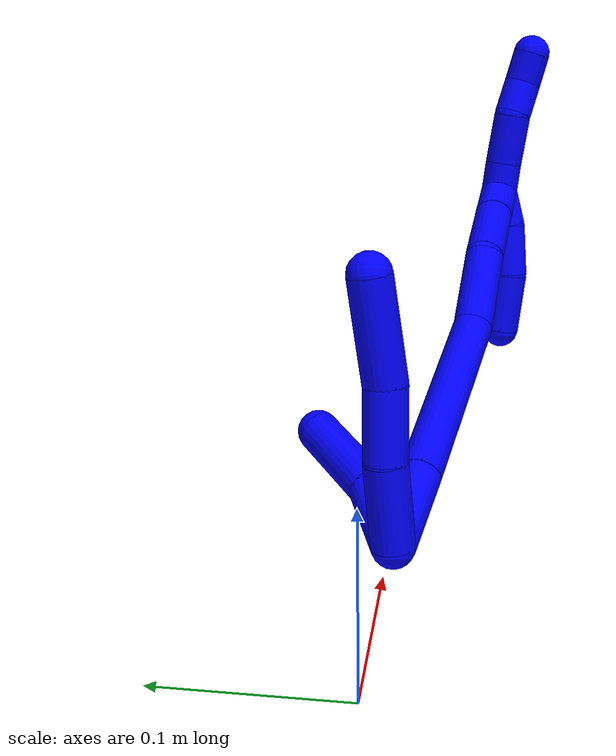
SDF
<sdf version="1.7">
 <world name="default">
  <model name="photoneo_s_sensor">
   <static>1</static>
   <pose>0 0 2 1.57079 1.57079 3.14159</pose>
   <link name="link">
    <inertial><mass>0.1</mass></inertial>
    <sensor name="sensor" type="depth">
     <update_rate>30</update_rate>
     <camera>
      <horizontal_fov>1.22</horizontal_fov>
      <image><width>1920</width><height>1200</height><format>B8G8R8</format></image>
      <clip><near>0.1</near><far>4</far></clip>
      <depth_camera><output>points</output></depth_camera>
     </camera>
     <plugin name="camera_plugin" filename="libgazebo_ros_depth_camera.so">
      <baseline>0.2</baseline>
      <alwaysOn>1</alwaysOn>
      <updateRate>0.0</updateRate>
      <cameraName>camera_ir</cameraName>
      <imageTopicName>/camera/color/image_raw</imageTopicName>
      <cameraInfoTopicName>/camera/color/camera_info</cameraInfoTopicName>
      <depthImageTopicName>/camera/depth/image_raw</depthImageTopicName>
      <depthImageCameraInfoTopicName>/camera/depth/camera_info</depthImageCameraInfoTopicName>
      <pointCloudTopicName>/camera/depth/points</pointCloudTopicName>
      <frameName>fr_optical</frameName>
      <pointCloudCutoff>0.1</pointCloudCutoff>
      <pointCloudCutoffMax>2.0</pointCloudCutoffMax>
      <distortionK1>0</distortionK1>
      <distortionK2>0</distortionK2>
      <distortionK3>0</distortionK3>
      <distortionT1>0</distortionT1>
      <distortionT2>0</distortionT2>
      <CxPrime>0</CxPrime>
      <Cx>0</Cx>
      <Cy>0</Cy>
      <focalLength>0</focalLength>
      <hackBaseline>0</hackBaseline>
     </plugin>
    </sensor>
   </link>
  </model>
  <model name="bin">
   <static>1</static>
   <link name="bottom">
    <collision name="collision-bottom">
     <pose>0 0 -0.01 0 -0 0</pose>
     <geometry><box><size>0.8 0.6 0.02</size></box></geometry>
     <surface>
      <friction><ode><mu>100</mu><mu2>100</mu2></ode></friction>
      <contact><collide_bitmask>65535</collide_bitmask></contact>
     </surface>
    </collision>
   </link>
   <link name="west_wall">
    <collision name="collision-west_wall">
     <pose>-0.41 0 0.1 0 -0 0</pose>
     <geometry><box><size>0.02 0.6 0.2</size></box></geometry>
     <surface>
      <friction><ode><mu>100</mu><mu2>100</mu2></ode></friction>
      <contact><collide_bitmask>65535</collide_bitmask></contact>
     </surface>
    </collision>
   </link>
   <link name="east_wall">
    <collision name="collision-east_wall">
     <pose>0.41 0 0.1 0 -0 0</pose>
     <geometry><box><size>0.02 0.6 0.2</size></box></geometry>
     <surface>
      <friction><ode><mu>100</mu><mu2>100</mu2></ode></friction>
      <contact><collide_bitmask>65535</collide_bitmask></contact>
     </surface>
    </collision>
   </link>
   <link name="south_wall">
    <collision name="collision-south_wall">
     <pose>0 -0.31 0.1 0 -0 0</pose>
     <geometry><box><size>0.8 0.02 0.2</size></box></geometry>
     <surface>
      <friction><ode><mu>100</mu><mu2>100</mu2></ode></friction>
      <contact><collide_bitmask>65535</collide_bitmask></contact>
     </surface>
    </collision>
   </link>
   <link name="north_wall">
    <collision name="collision-north_wall">
     <pose>0 0.31 0.1 0 -0 0</pose>
     <geometry><box><size>0.8 0.02 0.2</size></box></geometry>
     <surface>
      <friction><ode><mu>100</mu><mu2>100</mu2></ode></friction>
      <contact><collide_bitmask>65535</collide_bitmask></contact>
     </surface>
    </collision>
   </link>
  </model>
  <model name="1">
   <static>0</static>
   <link name="1">
    <collision name="collision-cylinder-e_1_2_8">
     <pose>-0.011889 -0.000995 0.02131 0.046636 -0.508444 -0.01212</pose>
     <geometry><cylinder><radius>0.0125</radius><length>0.048845</length></cylinder></geometry>
     <surface>
      <friction><ode><mu>1.16</mu><mu2>1.16</mu2><slip1>0</slip1><slip2>0</slip2></ode></friction>
      <contact><ode><kp>1e+06</kp><kd>1</kd><max_vel>0</max_vel><min_depth>0.001</min_depth></ode></contact>
     </surface>
    </collision>
    <visual name="visual-cylinder-e_1_2_8">
     <pose>-0.011889 -0.000995 0.02131 0.046636 -0.508444 -0.01212</pose>
     <geometry><cylinder><radius>0.0125</radius><length>0.048845</length></cylinder></geometry>
     <material><ambient>0 0 1 1</ambient></material>
    </visual>
    <collision name="collision-cylinder-e_2_8_9">
     <pose>-0.031495 -0.004301 0.061838 0.119703 -0.379322 -0.023006</pose>
     <geometry><cylinder><radius>0.0125</radius><length>0.041677</length></cylinder></geometry>
     <surface>
      <friction><ode><mu>1.16</mu><mu2>1.16</mu2><slip1>0</slip1><slip2>0</slip2></ode></friction>
      <contact><ode><kp>1e+06</kp><kd>1</kd><max_vel>0</max_vel><min_depth>0.001</min_depth></ode></contact>
     </surface>
    </collision>
    <visual name="visual-cylinder-e_2_8_9">
     <pose>-0.031495 -0.004301 0.061838 0.119703 -0.379322 -0.023006</pose>
     <geometry><cylinder><radius>0.0125</radius><length>0.041677</length></cylinder></geometry>
     <material><ambient>0 0 1 1</ambient></material>
    </visual>
    <collision name="collision-cylinder-e_3_9_6">
     <pose>-0.052937 -0.006141 0.107435 -0.017842 -0.479726 0.004364</pose>
     <geometry><cylinder><radius>0.0125</radius><length>0.059479</length></cylinder></geometry>
     <surface>
      <friction><ode><mu>1.16</mu><mu2>1.16</mu2><slip1>0</slip1><slip2>0</slip2></ode></friction>
      <contact><ode><kp>1e+06</kp><kd>1</kd><max_vel>0</max_vel><min_depth>0.001</min_depth></ode></contact>
     </surface>
    </collision>
    <visual name="visual-cylinder-e_3_9_6">
     <pose>-0.052937 -0.006141 0.107435 -0.017842 -0.479726 0.004364</pose>
     <geometry><cylinder><radius>0.0125</radius><length>0.059479</length></cylinder></geometry>
     <material><ambient>0 0 1 1</ambient></material>
    </visual>
    <collision name="collision-cylinder-e_1_2_10">
     <pose>0.008623 0.00757 0.016893 -0.421283 0.435937 -0.094643</pose>
     <geometry><cylinder><radius>0.0125</radius><length>0.040844</length></cylinder></geometry>
     <surface>
      <friction><ode><mu>1.16</mu><mu2>1.16</mu2><slip1>0</slip1><slip2>0</slip2></ode></friction>
      <contact><ode><kp>1e+06</kp><kd>1</kd><max_vel>0</max_vel><min_depth>0.001</min_depth></ode></contact>
     </surface>
    </collision>
    <visual name="visual-cylinder-e_1_2_10">
     <pose>0.008623 0.00757 0.016893 -0.421283 0.435937 -0.094643</pose>
     <geometry><cylinder><radius>0.0125</radius><length>0.040844</length></cylinder></geometry>
     <material><ambient>0 0 1 1</ambient></material>
    </visual>
    <collision name="collision-cylinder-e_2_10_5">
     <pose>0.031921 0.033043 0.0522 -0.771336 0.519126 -0.2148</pose>
     <geometry><cylinder><radius>0.0125</radius><length>0.059156</length></cylinder></geometry>
     <surface>
      <friction><ode><mu>1.16</mu><mu2>1.16</mu2><slip1>0</slip1><slip2>0</slip2></ode></friction>
      <contact><ode><kp>1e+06</kp><kd>1</kd><max_vel>0</max_vel><min_depth>0.001</min_depth></ode></contact>
     </surface>
    </collision>
    <visual name="visual-cylinder-e_2_10_5">
     <pose>0.031921 0.033043 0.0522 -0.771336 0.519126 -0.2148</pose>
     <geometry><cylinder><radius>0.0125</radius><length>0.059156</length></cylinder></geometry>
     <material><ambient>0 0 1 1</ambient></material>
    </visual>
    <collision name="collision-cylinder-e_1_2_11">
     <pose>0.013935 -0.00619 0.020057 0.299368 0.586082 0.090946</pose>
     <geometry><cylinder><radius>0.0125</radius><length>0.05039</length></cylinder></geometry>
     <surface>
      <friction><ode><mu>1.16</mu><mu2>1.16</mu2><slip1>0</slip1><slip2>0</slip2></ode></friction>
      <contact><ode><kp>1e+06</kp><kd>1</kd><max_vel>0</max_vel><min_depth>0.001</min_depth></ode></contact>
     </surface>
    </collision>
    <visual name="visual-cylinder-e_1_2_11">
     <pose>0.013935 -0.00619 0.020057 0.299368 0.586082 0.090946</pose>
     <geometry><cylinder><radius>0.0125</radius><length>0.05039</length></cylinder></geometry>
     <material><ambient>0 0 1 1</ambient></material>
    </visual>
    <collision name="collision-cylinder-e_2_11_12">
     <pose>0.062508 -0.026444 0.089133 0.279379 0.596632 0.086416</pose>
     <geometry><cylinder><radius>0.0125</radius><length>0.123296</length></cylinder></geometry>
     <surface>
      <friction><ode><mu>1.16</mu><mu2>1.16</mu2><slip1>0</slip1><slip2>0</slip2></ode></friction>
      <contact><ode><kp>1e+06</kp><kd>1</kd><max_vel>0</max_vel><min_depth>0.001</min_depth></ode></contact>
     </surface>
    </collision>
    <visual name="visual-cylinder-e_2_11_12">
     <pose>0.062508 -0.026444 0.089133 0.279379 0.596632 0.086416</pose>
     <geometry><cylinder><radius>0.0125</radius><length>0.123296</length></cylinder></geometry>
     <material><ambient>0 0 1 1</ambient></material>
    </visual>
    <collision name="collision-cylinder-e_3_12_13">
     <pose>0.104884 -0.045065 0.163546 0.177619 0.291421 0.026133</pose>
     <geometry><cylinder><radius>0.0125</radius><length>0.053869</length></cylinder></geometry>
     <surface>
      <friction><ode><mu>1.16</mu><mu2>1.16</mu2><slip1>0</slip1><slip2>0</slip2></ode></friction>
      <contact><ode><kp>1e+06</kp><kd>1</kd><max_vel>0</max_vel><min_depth>0.001</min_depth></ode></contact>
     </surface>
    </collision>
    <visual name="visual-cylinder-e_3_12_13">
     <pose>0.104884 -0.045065 0.163546 0.177619 0.291421 0.026133</pose>
     <geometry><cylinder><radius>0.0125</radius><length>0.053869</length></cylinder></geometry>
     <material><ambient>0 0 1 1</ambient></material>
    </visual>
    <collision name="collision-cylinder-e_4_13_14">
     <pose>0.125353 -0.052618 0.206815 0.165998 0.612294 0.052578</pose>
     <geometry><cylinder><radius>0.0125</radius><length>0.044298</length></cylinder></geometry>
     <surface>
      <friction><ode><mu>1.16</mu><mu2>1.16</mu2><slip1>0</slip1><slip2>0</slip2></ode></friction>
      <contact><ode><kp>1e+06</kp><kd>1</kd><max_vel>0</max_vel><min_depth>0.001</min_depth></ode></contact>
     </surface>
    </collision>
    <visual name="visual-cylinder-e_4_13_14">
     <pose>0.125353 -0.052618 0.206815 0.165998 0.612294 0.052578</pose>
     <geometry><cylinder><radius>0.0125</radius><length>0.044298</length></cylinder></geometry>
     <material><ambient>0 0 1 1</ambient></material>
    </visual>
    <collision name="collision-cylinder-e_5_14_1">
     <pose>0.146477 -0.05749 0.23583 0.166937 0.639074 0.05535</pose>
     <geometry><cylinder><radius>0.0125</radius><length>0.028147</length></cylinder></geometry>
     <surface>
      <friction><ode><mu>1.16</mu><mu2>1.16</mu2><slip1>0</slip1><slip2>0</slip2></ode></friction>
      <contact><ode><kp>1e+06</kp><kd>1</kd><max_vel>0</max_vel><min_depth>0.001</min_depth></ode></contact>
     </surface>
    </collision>
    <visual name="visual-cylinder-e_5_14_1">
     <pose>0.146477 -0.05749 0.23583 0.166937 0.639074 0.05535</pose>
     <geometry><cylinder><radius>0.0125</radius><length>0.028147</length></cylinder></geometry>
     <material><ambient>0 0 1 1</ambient></material>
    </visual>
    <collision name="collision-cylinder-e_1_1_15">
     <pose>0.159174 -0.060969 0.23518 3.00657 0.347015 2.40524</pose>
     <geometry><cylinder><radius>0.0125</radius><length>0.025304</length></cylinder></geometry>
     <surface>
      <friction><ode><mu>1.16</mu><mu2>1.16</mu2><slip1>0</slip1><slip2>0</slip2></ode></friction>
      <contact><ode><kp>1e+06</kp><kd>1</kd><max_vel>0</max_vel><min_depth>0.001</min_depth></ode></contact>
     </surface>
    </collision>
    <visual name="visual-cylinder-e_1_1_15">
     <pose>0.159174 -0.060969 0.23518 3.00657 0.347015 2.40524</pose>
     <geometry><cylinder><radius>0.0125</radius><length>0.025304</length></cylinder></geometry>
     <material><ambient>0 0 1 1</ambient></material>
    </visual>
    <collision name="collision-cylinder-e_2_15_16">
     <pose>0.168788 -0.061668 0.206984 -3.08662 0.312639 -2.7962</pose>
     <geometry><cylinder><radius>0.0125</radius><length>0.034536</length></cylinder></geometry>
     <surface>
      <friction><ode><mu>1.16</mu><mu2>1.16</mu2><slip1>0</slip1><slip2>0</slip2></ode></friction>
      <contact><ode><kp>1e+06</kp><kd>1</kd><max_vel>0</max_vel><min_depth>0.001</min_depth></ode></contact>
     </surface>
    </collision>
    <visual name="visual-cylinder-e_2_15_16">
     <pose>0.168788 -0.061668 0.206984 -3.08662 0.312639 -2.7962</pose>
     <geometry><cylinder><radius>0.0125</radius><length>0.034536</length></cylinder></geometry>
     <material><ambient>0 0 1 1</ambient></material>
    </visual>
    <collision name="collision-cylinder-e_3_16_4">
     <pose>0.181552 -0.055882 0.172583 -2.87665 0.380257 -1.93041</pose>
     <geometry><cylinder><radius>0.0125</radius><length>0.04016</length></cylinder></geometry>
     <surface>
      <friction><ode><mu>1.16</mu><mu2>1.16</mu2><slip1>0</slip1><slip2>0</slip2></ode></friction>
      <contact><ode><kp>1e+06</kp><kd>1</kd><max_vel>0</max_vel><min_depth>0.001</min_depth></ode></contact>
     </surface>
    </collision>
    <visual name="visual-cylinder-e_3_16_4">
     <pose>0.181552 -0.055882 0.172583 -2.87665 0.380257 -1.93041</pose>
     <geometry><cylinder><radius>0.0125</radius><length>0.04016</length></cylinder></geometry>
     <material><ambient>0 0 1 1</ambient></material>
    </visual>
    <collision name="collision-cylinder-e_1_1_17">
     <pose>0.151508 -0.061804 0.256156 0.259282 -0.340098 -0.044764</pose>
     <geometry><cylinder><radius>0.0125</radius><length>0.020164</length></cylinder></geometry>
     <surface>
      <friction><ode><mu>1.16</mu><mu2>1.16</mu2><slip1>0</slip1><slip2>0</slip2></ode></friction>
      <contact><ode><kp>1e+06</kp><kd>1</kd><max_vel>0</max_vel><min_depth>0.001</min_depth></ode></contact>
     </surface>
    </collision>
    <visual name="visual-cylinder-e_1_1_17">
     <pose>0.151508 -0.061804 0.256156 0.259282 -0.340098 -0.044764</pose>
     <geometry><cylinder><radius>0.0125</radius><length>0.020164</length></cylinder></geometry>
     <material><ambient>0 0 1 1</ambient></material>
    </visual>
    <collision name="collision-cylinder-e_2_17_18">
     <pose>0.1415 -0.068979 0.280377 0.305335 -0.398985 -0.062197</pose>
     <geometry><cylinder><radius>0.0125</radius><length>0.034212</length></cylinder></geometry>
     <surface>
      <friction><ode><mu>1.16</mu><mu2>1.16</mu2><slip1>0</slip1><slip2>0</slip2></ode></friction>
      <contact><ode><kp>1e+06</kp><kd>1</kd><max_vel>0</max_vel><min_depth>0.001</min_depth></ode></contact>
     </surface>
    </collision>
    <visual name="visual-cylinder-e_2_17_18">
     <pose>0.1415 -0.068979 0.280377 0.305335 -0.398985 -0.062197</pose>
     <geometry><cylinder><radius>0.0125</radius><length>0.034212</length></cylinder></geometry>
     <material><ambient>0 0 1 1</ambient></material>
    </visual>
    <collision name="collision-cylinder-e_3_18_19">
     <pose>0.134158 -0.078023 0.306566 0.368332 -0.058203 -0.010845</pose>
     <geometry><cylinder><radius>0.0125</radius><length>0.023957</length></cylinder></geometry>
     <surface>
      <friction><ode><mu>1.16</mu><mu2>1.16</mu2><slip1>0</slip1><slip2>0</slip2></ode></friction>
      <contact><ode><kp>1e+06</kp><kd>1</kd><max_vel>0</max_vel><min_depth>0.001</min_depth></ode></contact>
     </surface>
    </collision>
    <visual name="visual-cylinder-e_3_18_19">
     <pose>0.134158 -0.078023 0.306566 0.368332 -0.058203 -0.010845</pose>
     <geometry><cylinder><radius>0.0125</radius><length>0.023957</length></cylinder></geometry>
     <material><ambient>0 0 1 1</ambient></material>
    </visual>
    <collision name="collision-cylinder-e_4_19_3">
     <pose>0.129722 -0.086469 0.327009 0.41935 -0.352386 -0.075738</pose>
     <geometry><cylinder><radius>0.0125</radius><length>0.021667</length></cylinder></geometry>
     <surface>
      <friction><ode><mu>1.16</mu><mu2>1.16</mu2><slip1>0</slip1><slip2>0</slip2></ode></friction>
      <contact><ode><kp>1e+06</kp><kd>1</kd><max_vel>0</max_vel><min_depth>0.001</min_depth></ode></contact>
     </surface>
    </collision>
    <visual name="visual-cylinder-e_4_19_3">
     <pose>0.129722 -0.086469 0.327009 0.41935 -0.352386 -0.075738</pose>
     <geometry><cylinder><radius>0.0125</radius><length>0.021667</length></cylinder></geometry>
     <material><ambient>0 0 1 1</ambient></material>
    </visual>
    <collision name="collision-sphere-3">
     <pose>0.125983 -0.090609 0.336296 0 -0 0</pose>
     <geometry><sphere><radius>0.0125</radius></sphere></geometry>
     <surface>
      <friction><ode><mu>1.16</mu><mu2>1.16</mu2><slip1>0</slip1><slip2>0</slip2></ode></friction>
      <contact><ode><kp>1e+06</kp><kd>1</kd><max_vel>0</max_vel><min_depth>0.001</min_depth></ode></contact>
     </surface>
    </collision>
    <visual name="visual-sphere-3">
     <pose>0.125983 -0.090609 0.336296 0 -0 0</pose>
     <geometry><sphere><radius>0.0125</radius></sphere></geometry>
     <material><ambient>0 0 1 1</ambient></material>
    </visual>
    <collision name="collision-sphere-19">
     <pose>0.133461 -0.082329 0.317723 0 -0 0</pose>
     <geometry><sphere><radius>0.0125</radius></sphere></geometry>
     <surface>
      <friction><ode><mu>1.16</mu><mu2>1.16</mu2><slip1>0</slip1><slip2>0</slip2></ode></friction>
      <contact><ode><kp>1e+06</kp><kd>1</kd><max_vel>0</max_vel><min_depth>0.001</min_depth></ode></contact>
     </surface>
    </collision>
    <visual name="visual-sphere-19">
     <pose>0.133461 -0.082329 0.317723 0 -0 0</pose>
     <geometry><sphere><radius>0.0125</radius></sphere></geometry>
     <material><ambient>0 0 1 1</ambient></material>
    </visual>
    <collision name="collision-sphere-5">
     <pose>0.046595 0.050945 0.070613 0 -0 0</pose>
     <geometry><sphere><radius>0.0125</radius></sphere></geometry>
     <surface>
      <friction><ode><mu>1.16</mu><mu2>1.16</mu2><slip1>0</slip1><slip2>0</slip2></ode></friction>
      <contact><ode><kp>1e+06</kp><kd>1</kd><max_vel>0</max_vel><min_depth>0.001</min_depth></ode></contact>
     </surface>
    </collision>
    <visual name="visual-sphere-5">
     <pose>0.046595 0.050945 0.070613 0 -0 0</pose>
     <geometry><sphere><radius>0.0125</radius></sphere></geometry>
     <material><ambient>0 0 1 1</ambient></material>
    </visual>
    <collision name="collision-sphere-10">
     <pose>0.017247 0.01514 0.033787 0 -0 0</pose>
     <geometry><sphere><radius>0.0125</radius></sphere></geometry>
     <surface>
      <friction><ode><mu>1.16</mu><mu2>1.16</mu2><slip1>0</slip1><slip2>0</slip2></ode></friction>
      <contact><ode><kp>1e+06</kp><kd>1</kd><max_vel>0</max_vel><min_depth>0.001</min_depth></ode></contact>
     </surface>
    </collision>
    <visual name="visual-sphere-10">
     <pose>0.017247 0.01514 0.033787 0 -0 0</pose>
     <geometry><sphere><radius>0.0125</radius></sphere></geometry>
     <material><ambient>0 0 1 1</ambient></material>
    </visual>
    <collision name="collision-sphere-6">
     <pose>-0.066663 -0.005671 0.133813 0 -0 0</pose>
     <geometry><sphere><radius>0.0125</radius></sphere></geometry>
     <surface>
      <friction><ode><mu>1.16</mu><mu2>1.16</mu2><slip1>0</slip1><slip2>0</slip2></ode></friction>
      <contact><ode><kp>1e+06</kp><kd>1</kd><max_vel>0</max_vel><min_depth>0.001</min_depth></ode></contact>
     </surface>
    </collision>
    <visual name="visual-sphere-6">
     <pose>-0.066663 -0.005671 0.133813 0 -0 0</pose>
     <geometry><sphere><radius>0.0125</radius></sphere></geometry>
     <material><ambient>0 0 1 1</ambient></material>
    </visual>
    <collision name="collision-sphere-9">
     <pose>-0.039211 -0.006612 0.081057 0 -0 0</pose>
     <geometry><sphere><radius>0.0125</radius></sphere></geometry>
     <surface>
      <friction><ode><mu>1.16</mu><mu2>1.16</mu2><slip1>0</slip1><slip2>0</slip2></ode></friction>
      <contact><ode><kp>1e+06</kp><kd>1</kd><max_vel>0</max_vel><min_depth>0.001</min_depth></ode></contact>
     </surface>
    </collision>
    <visual name="visual-sphere-9">
     <pose>-0.039211 -0.006612 0.081057 0 -0 0</pose>
     <geometry><sphere><radius>0.0125</radius></sphere></geometry>
     <material><ambient>0 0 1 1</ambient></material>
    </visual>
    <collision name="collision-sphere-2">
     <geometry><sphere><radius>0.0125</radius></sphere></geometry>
     <surface>
      <friction><ode><mu>1.16</mu><mu2>1.16</mu2><slip1>0</slip1><slip2>0</slip2></ode></friction>
      <contact><ode><kp>1e+06</kp><kd>1</kd><max_vel>0</max_vel><min_depth>0.001</min_depth></ode></contact>
     </surface>
    </collision>
    <visual name="visual-sphere-2">
     <geometry><sphere><radius>0.0125</radius></sphere></geometry>
     <material><ambient>0 0 1 1</ambient></material>
    </visual>
    <collision name="collision-sphere-8">
     <pose>-0.023779 -0.001989 0.04262 0 -0 0</pose>
     <geometry><sphere><radius>0.0125</radius></sphere></geometry>
     <surface>
      <friction><ode><mu>1.16</mu><mu2>1.16</mu2><slip1>0</slip1><slip2>0</slip2></ode></friction>
      <contact><ode><kp>1e+06</kp><kd>1</kd><max_vel>0</max_vel><min_depth>0.001</min_depth></ode></contact>
     </surface>
    </collision>
    <visual name="visual-sphere-8">
     <pose>-0.023779 -0.001989 0.04262 0 -0 0</pose>
     <geometry><sphere><radius>0.0125</radius></sphere></geometry>
     <material><ambient>0 0 1 1</ambient></material>
    </visual>
    <collision name="collision-sphere-11">
     <pose>0.027871 -0.012381 0.040114 0 -0 0</pose>
     <geometry><sphere><radius>0.0125</radius></sphere></geometry>
     <surface>
      <friction><ode><mu>1.16</mu><mu2>1.16</mu2><slip1>0</slip1><slip2>0</slip2></ode></friction>
      <contact><ode><kp>1e+06</kp><kd>1</kd><max_vel>0</max_vel><min_depth>0.001</min_depth></ode></contact>
     </surface>
    </collision>
    <visual name="visual-sphere-11">
     <pose>0.027871 -0.012381 0.040114 0 -0 0</pose>
     <geometry><sphere><radius>0.0125</radius></sphere></geometry>
     <material><ambient>0 0 1 1</ambient></material>
    </visual>
    <collision name="collision-sphere-12">
     <pose>0.097146 -0.040507 0.138153 0 -0 0</pose>
     <geometry><sphere><radius>0.0125</radius></sphere></geometry>
     <surface>
      <friction><ode><mu>1.16</mu><mu2>1.16</mu2><slip1>0</slip1><slip2>0</slip2></ode></friction>
      <contact><ode><kp>1e+06</kp><kd>1</kd><max_vel>0</max_vel><min_depth>0.001</min_depth></ode></contact>
     </surface>
    </collision>
    <visual name="visual-sphere-12">
     <pose>0.097146 -0.040507 0.138153 0 -0 0</pose>
     <geometry><sphere><radius>0.0125</radius></sphere></geometry>
     <material><ambient>0 0 1 1</ambient></material>
    </visual>
    <collision name="collision-sphere-13">
     <pose>0.112623 -0.049623 0.188939 0 -0 0</pose>
     <geometry><sphere><radius>0.0125</radius></sphere></geometry>
     <surface>
      <friction><ode><mu>1.16</mu><mu2>1.16</mu2><slip1>0</slip1><slip2>0</slip2></ode></friction>
      <contact><ode><kp>1e+06</kp><kd>1</kd><max_vel>0</max_vel><min_depth>0.001</min_depth></ode></contact>
     </surface>
    </collision>
    <visual name="visual-sphere-13">
     <pose>0.112623 -0.049623 0.188939 0 -0 0</pose>
     <geometry><sphere><radius>0.0125</radius></sphere></geometry>
     <material><ambient>0 0 1 1</ambient></material>
    </visual>
    <collision name="collision-sphere-14">
     <pose>0.138083 -0.055613 0.224691 0 -0 0</pose>
     <geometry><sphere><radius>0.0125</radius></sphere></geometry>
     <surface>
      <friction><ode><mu>1.16</mu><mu2>1.16</mu2><slip1>0</slip1><slip2>0</slip2></ode></friction>
      <contact><ode><kp>1e+06</kp><kd>1</kd><max_vel>0</max_vel><min_depth>0.001</min_depth></ode></contact>
     </surface>
    </collision>
    <visual name="visual-sphere-14">
     <pose>0.138083 -0.055613 0.224691 0 -0 0</pose>
     <geometry><sphere><radius>0.0125</radius></sphere></geometry>
     <material><ambient>0 0 1 1</ambient></material>
    </visual>
    <collision name="collision-sphere-1">
     <pose>0.154872 -0.059367 0.246969 0 -0 0</pose>
     <geometry><sphere><radius>0.0125</radius></sphere></geometry>
     <surface>
      <friction><ode><mu>1.16</mu><mu2>1.16</mu2><slip1>0</slip1><slip2>0</slip2></ode></friction>
      <contact><ode><kp>1e+06</kp><kd>1</kd><max_vel>0</max_vel><min_depth>0.001</min_depth></ode></contact>
     </surface>
    </collision>
    <visual name="visual-sphere-1">
     <pose>0.154872 -0.059367 0.246969 0 -0 0</pose>
     <geometry><sphere><radius>0.0125</radius></sphere></geometry>
     <material><ambient>0 0 1 1</ambient></material>
    </visual>
    <collision name="collision-sphere-18">
     <pose>0.134854 -0.073718 0.29541 0 -0 0</pose>
     <geometry><sphere><radius>0.0125</radius></sphere></geometry>
     <surface>
      <friction><ode><mu>1.16</mu><mu2>1.16</mu2><slip1>0</slip1><slip2>0</slip2></ode></friction>
      <contact><ode><kp>1e+06</kp><kd>1</kd><max_vel>0</max_vel><min_depth>0.001</min_depth></ode></contact>
     </surface>
    </collision>
    <visual name="visual-sphere-18">
     <pose>0.134854 -0.073718 0.29541 0 -0 0</pose>
     <geometry><sphere><radius>0.0125</radius></sphere></geometry>
     <material><ambient>0 0 1 1</ambient></material>
    </visual>
    <collision name="collision-sphere-15">
     <pose>0.163477 -0.06257 0.22339 0 -0 0</pose>
     <geometry><sphere><radius>0.0125</radius></sphere></geometry>
     <surface>
      <friction><ode><mu>1.16</mu><mu2>1.16</mu2><slip1>0</slip1><slip2>0</slip2></ode></friction>
      <contact><ode><kp>1e+06</kp><kd>1</kd><max_vel>0</max_vel><min_depth>0.001</min_depth></ode></contact>
     </surface>
    </collision>
    <visual name="visual-sphere-15">
     <pose>0.163477 -0.06257 0.22339 0 -0 0</pose>
     <geometry><sphere><radius>0.0125</radius></sphere></geometry>
     <material><ambient>0 0 1 1</ambient></material>
    </visual>
    <collision name="collision-sphere-16">
     <pose>0.174099 -0.060765 0.190578 0 -0 0</pose>
     <geometry><sphere><radius>0.0125</radius></sphere></geometry>
     <surface>
      <friction><ode><mu>1.16</mu><mu2>1.16</mu2><slip1>0</slip1><slip2>0</slip2></ode></friction>
      <contact><ode><kp>1e+06</kp><kd>1</kd><max_vel>0</max_vel><min_depth>0.001</min_depth></ode></contact>
     </surface>
    </collision>
    <visual name="visual-sphere-16">
     <pose>0.174099 -0.060765 0.190578 0 -0 0</pose>
     <geometry><sphere><radius>0.0125</radius></sphere></geometry>
     <material><ambient>0 0 1 1</ambient></material>
    </visual>
    <collision name="collision-sphere-4">
     <pose>0.189005 -0.051 0.154588 0 -0 0</pose>
     <geometry><sphere><radius>0.0125</radius></sphere></geometry>
     <surface>
      <friction><ode><mu>1.16</mu><mu2>1.16</mu2><slip1>0</slip1><slip2>0</slip2></ode></friction>
      <contact><ode><kp>1e+06</kp><kd>1</kd><max_vel>0</max_vel><min_depth>0.001</min_depth></ode></contact>
     </surface>
    </collision>
    <visual name="visual-sphere-4">
     <pose>0.189005 -0.051 0.154588 0 -0 0</pose>
     <geometry><sphere><radius>0.0125</radius></sphere></geometry>
     <material><ambient>0 0 1 1</ambient></material>
    </visual>
    <collision name="collision-sphere-17">
     <pose>0.148145 -0.064241 0.265343 0 -0 0</pose>
     <geometry><sphere><radius>0.0125</radius></sphere></geometry>
     <surface>
      <friction><ode><mu>1.16</mu><mu2>1.16</mu2><slip1>0</slip1><slip2>0</slip2></ode></friction>
      <contact><ode><kp>1e+06</kp><kd>1</kd><max_vel>0</max_vel><min_depth>0.001</min_depth></ode></contact>
     </surface>
    </collision>
    <visual name="visual-sphere-17">
     <pose>0.148145 -0.064241 0.265343 0 -0 0</pose>
     <geometry><sphere><radius>0.0125</radius></sphere></geometry>
     <material><ambient>0 0 1 1</ambient></material>
    </visual>
    <inertial>
     <pose>0.069337 -0.028725 0.132818 0 -0 0</pose>
     <mass>0.75</mass>
     <inertia>
      <ixx>0.00024</ixx>
      <ixy>0</ixy>
      <ixz>0</ixz>
      <iyy>0.000274</iyy>
      <iyz>0</iyz>
      <izz>-3.9e-05</izz>
     </inertia>
    </inertial>
   </link>
   <pose>0.111905 -0.00412 0.012178 -0.167585 0.568755 -0.114689</pose>
  </model>
 </world>
</sdf>
